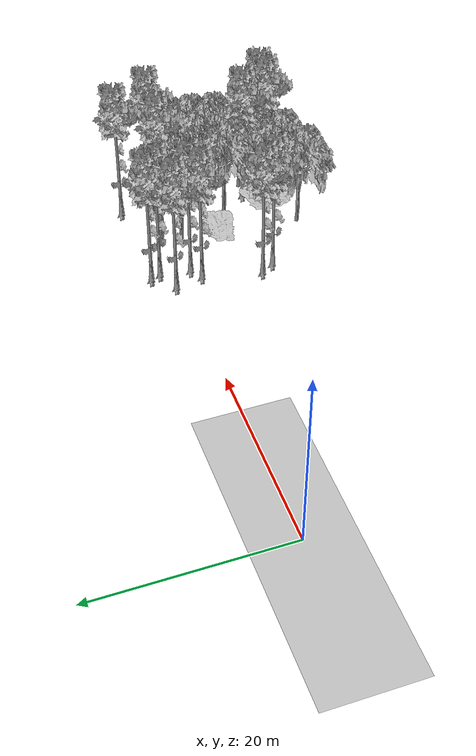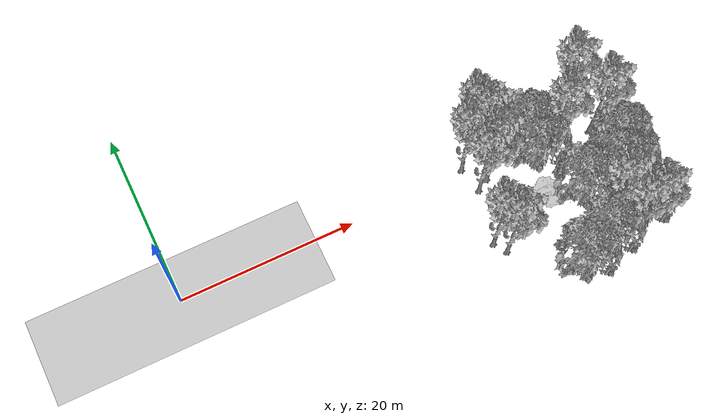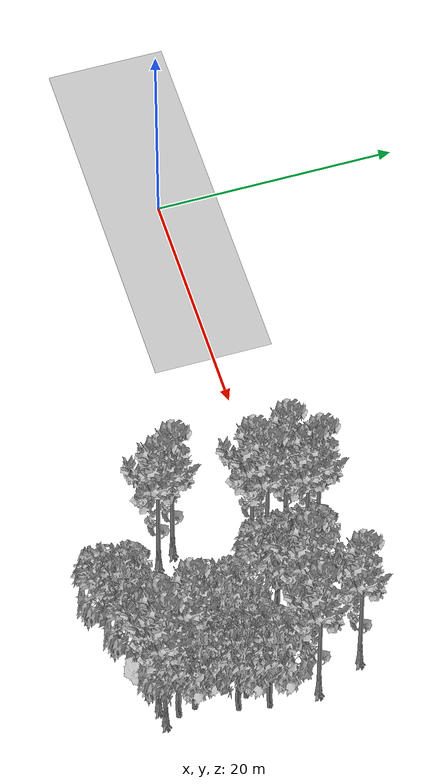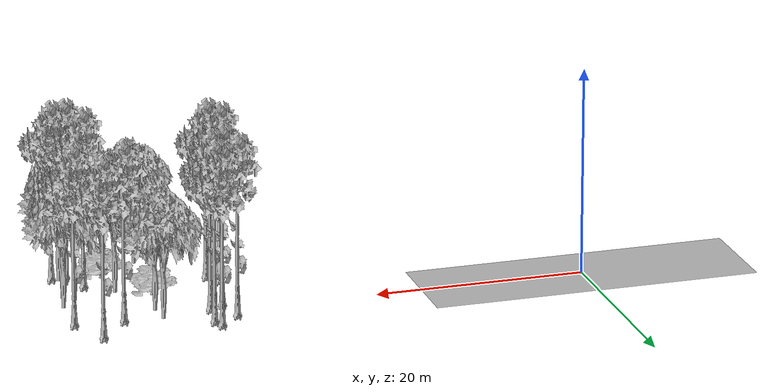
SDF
<sdf version="1.7">
 <world name="default">
  <model name="ground_plane">
   <static>1</static>
   <link name="link">
    <collision name="collision">
     <pose>-50 0 0 0 -0 0</pose>
     <geometry><plane><normal>0 0 1</normal><size>100 100</size></plane></geometry>
     <surface><contact><ode><min_depth>0.01</min_depth><max_vel>0</max_vel></ode></contact></surface>
    </collision>
    <visual name="grass">
     <cast_shadows>0</cast_shadows>
     <geometry>
      <mesh>
       <scale>0.5814285714285714 0.18142857142857144 0.1</scale>
       <uri>file://grass_plane/meshes/grass_plane.dae</uri>
      </mesh>
     </geometry>
    </visual>
   </link>
  </model>
  <model name="Tree 5">
   <static>1</static>
   <pose>46.26778932260032 -13.657653909330001 0 1.57079 -0 0</pose>
   <link name="link">
    <collision name="collision">
     <geometry><mesh><scale>3.5 5 3.5</scale><uri>model://tree_9/meshes/tree_9.obj</uri></mesh></geometry>
    </collision>
    <visual name="visual">
     <geometry><mesh><scale>3.5 5 3.5</scale><uri>model://tree_9/meshes/tree_9.obj</uri></mesh></geometry>
    </visual>
   </link>
  </model>
  <model name="Tree 8">
   <static>1</static>
   <pose>39.279730726296535 -14.857342049592196 0 1.57079 -0 0</pose>
   <link name="link">
    <collision name="collision">
     <geometry><mesh><scale>3.5 5 3.5</scale><uri>model://tree_2/meshes/tree_2.obj</uri></mesh></geometry>
    </collision>
    <visual name="visual">
     <geometry><mesh><scale>3.5 5 3.5</scale><uri>model://tree_2/meshes/tree_2.obj</uri></mesh></geometry>
    </visual>
   </link>
  </model>
  <model name="Tree 10">
   <static>1</static>
   <pose>48.38416545549488 -1.3651510952334238 0 1.57079 -0 0</pose>
   <link name="link">
    <collision name="collision">
     <geometry><mesh><scale>3.5 5 3.5</scale><uri>model://tree_9/meshes/tree_9.obj</uri></mesh></geometry>
    </collision>
    <visual name="visual">
     <geometry><mesh><scale>3.5 5 3.5</scale><uri>model://tree_9/meshes/tree_9.obj</uri></mesh></geometry>
    </visual>
   </link>
  </model>
  <model name="Tree 31">
   <static>1</static>
   <pose>33.67170362967141 -9.925883491631996 0 1.57079 -0 0</pose>
   <link name="link">
    <collision name="collision">
     <geometry><mesh><scale>3.5 5 3.5</scale><uri>model://tree_9/meshes/tree_9.obj</uri></mesh></geometry>
    </collision>
    <visual name="visual">
     <geometry><mesh><scale>3.5 5 3.5</scale><uri>model://tree_9/meshes/tree_9.obj</uri></mesh></geometry>
    </visual>
   </link>
  </model>
  <model name="Tree 36">
   <static>1</static>
   <pose>46.59404608997687 2.5339468570013146 0 1.57079 -0 0</pose>
   <link name="link">
    <collision name="collision">
     <geometry><mesh><scale>3.5 5 3.5</scale><uri>model://tree_9/meshes/tree_9.obj</uri></mesh></geometry>
    </collision>
    <visual name="visual">
     <geometry><mesh><scale>3.5 5 3.5</scale><uri>model://tree_9/meshes/tree_9.obj</uri></mesh></geometry>
    </visual>
   </link>
  </model>
  <model name="Tree 60">
   <static>1</static>
   <pose>39.800009960935185 -6.470132537083185 0 1.57079 -0 0</pose>
   <link name="link">
    <collision name="collision">
     <geometry><mesh><scale>3 2 3</scale><uri>model://tree_3/meshes/tree_3.obj</uri></mesh></geometry>
    </collision>
    <visual name="visual">
     <geometry><mesh><scale>3 2 3</scale><uri>model://tree_3/meshes/tree_3.obj</uri></mesh></geometry>
    </visual>
   </link>
  </model>
  <model name="Tree 67">
   <static>1</static>
   <pose>35.49410499102194 -1.6162299674739664 0 1.57079 -0 0</pose>
   <link name="link">
    <collision name="collision">
     <geometry><mesh><scale>3.5 5 3.5</scale><uri>model://tree_9/meshes/tree_9.obj</uri></mesh></geometry>
    </collision>
    <visual name="visual">
     <geometry><mesh><scale>3.5 5 3.5</scale><uri>model://tree_9/meshes/tree_9.obj</uri></mesh></geometry>
    </visual>
   </link>
  </model>
  <model name="Tree 138">
   <static>1</static>
   <pose>47.1347385851321 -12.319780748824224 0 1.57079 -0 0</pose>
   <link name="link">
    <collision name="collision">
     <geometry><mesh><scale>3.5 5 3.5</scale><uri>model://tree_2/meshes/tree_2.obj</uri></mesh></geometry>
    </collision>
    <visual name="visual">
     <geometry><mesh><scale>3.5 5 3.5</scale><uri>model://tree_2/meshes/tree_2.obj</uri></mesh></geometry>
    </visual>
   </link>
  </model>
  <model name="Tree 147">
   <static>1</static>
   <pose>32.75170010020453 -8.509522857434707 0 1.57079 -0 0</pose>
   <link name="link">
    <collision name="collision">
     <geometry><mesh><scale>3.5 5 3.5</scale><uri>model://tree_9/meshes/tree_9.obj</uri></mesh></geometry>
    </collision>
    <visual name="visual">
     <geometry><mesh><scale>3.5 5 3.5</scale><uri>model://tree_9/meshes/tree_9.obj</uri></mesh></geometry>
    </visual>
   </link>
  </model>
  <model name="Tree 155">
   <static>1</static>
   <pose>48.33724805029608 -5.349467480005313 0 1.57079 -0 0</pose>
   <link name="link">
    <collision name="collision">
     <geometry><mesh><scale>3.5 5 3.5</scale><uri>model://tree_2/meshes/tree_2.obj</uri></mesh></geometry>
    </collision>
    <visual name="visual">
     <geometry><mesh><scale>3.5 5 3.5</scale><uri>model://tree_2/meshes/tree_2.obj</uri></mesh></geometry>
    </visual>
   </link>
  </model>
  <model name="Tree 158">
   <static>1</static>
   <pose>47.656178686363845 -13.493441604704543 0 1.57079 -0 0</pose>
   <link name="link">
    <collision name="collision">
     <geometry><mesh><scale>3.5 5 3.5</scale><uri>model://tree_9/meshes/tree_9.obj</uri></mesh></geometry>
    </collision>
    <visual name="visual">
     <geometry><mesh><scale>3.5 5 3.5</scale><uri>model://tree_9/meshes/tree_9.obj</uri></mesh></geometry>
    </visual>
   </link>
  </model>
  <model name="Tree 165">
   <static>1</static>
   <pose>42.68493222435313 -13.311079963271577 0 1.57079 -0 0</pose>
   <link name="link">
    <collision name="collision">
     <geometry><mesh><scale>4 2.5 4</scale><uri>model://tree_1/meshes/tree_1.obj</uri></mesh></geometry>
    </collision>
    <visual name="visual">
     <geometry><mesh><scale>4 2.5 4</scale><uri>model://tree_1/meshes/tree_1.obj</uri></mesh></geometry>
    </visual>
   </link>
  </model>
  <model name="Tree 171">
   <static>1</static>
   <pose>42.59535664967645 -13.716658682666278 0 1.57079 -0 0</pose>
   <link name="link">
    <collision name="collision">
     <geometry><mesh><scale>3.5 5 3.5</scale><uri>model://tree_2/meshes/tree_2.obj</uri></mesh></geometry>
    </collision>
    <visual name="visual">
     <geometry><mesh><scale>3.5 5 3.5</scale><uri>model://tree_2/meshes/tree_2.obj</uri></mesh></geometry>
    </visual>
   </link>
  </model>
  <model name="Tree 172">
   <static>1</static>
   <pose>43.2766146022865 -12.114530911410363 0 1.57079 -0 0</pose>
   <link name="link">
    <collision name="collision">
     <geometry><mesh><scale>3 2 3</scale><uri>model://tree_3/meshes/tree_3.obj</uri></mesh></geometry>
    </collision>
    <visual name="visual">
     <geometry><mesh><scale>3 2 3</scale><uri>model://tree_3/meshes/tree_3.obj</uri></mesh></geometry>
    </visual>
   </link>
  </model>
  <model name="Tree 197">
   <static>1</static>
   <pose>42.87080940689573 -7.844555207242103 0 1.57079 -0 0</pose>
   <link name="link">
    <collision name="collision">
     <geometry><mesh><scale>3.5 5 3.5</scale><uri>model://tree_2/meshes/tree_2.obj</uri></mesh></geometry>
    </collision>
    <visual name="visual">
     <geometry><mesh><scale>3.5 5 3.5</scale><uri>model://tree_2/meshes/tree_2.obj</uri></mesh></geometry>
    </visual>
   </link>
  </model>
  <model name="Tree 203">
   <static>1</static>
   <pose>34.143458005204934 -2.4114361355312077 0 1.57079 -0 0</pose>
   <link name="link">
    <collision name="collision">
     <geometry><mesh><scale>3.5 5 3.5</scale><uri>model://tree_9/meshes/tree_9.obj</uri></mesh></geometry>
    </collision>
    <visual name="visual">
     <geometry><mesh><scale>3.5 5 3.5</scale><uri>model://tree_9/meshes/tree_9.obj</uri></mesh></geometry>
    </visual>
   </link>
  </model>
  <model name="Tree 222">
   <static>1</static>
   <pose>33.50005423930622 0.5369734188633384 0 1.57079 -0 0</pose>
   <link name="link">
    <collision name="collision">
     <geometry><mesh><scale>3.5 5 3.5</scale><uri>model://tree_9/meshes/tree_9.obj</uri></mesh></geometry>
    </collision>
    <visual name="visual">
     <geometry><mesh><scale>3.5 5 3.5</scale><uri>model://tree_9/meshes/tree_9.obj</uri></mesh></geometry>
    </visual>
   </link>
  </model>
  <model name="Tree 230">
   <static>1</static>
   <pose>35.924784180318454 1.5369787917898918 0 1.57079 -0 0</pose>
   <link name="link">
    <collision name="collision">
     <geometry><mesh><scale>3.5 5 3.5</scale><uri>model://tree_9/meshes/tree_9.obj</uri></mesh></geometry>
    </collision>
    <visual name="visual">
     <geometry><mesh><scale>3.5 5 3.5</scale><uri>model://tree_9/meshes/tree_9.obj</uri></mesh></geometry>
    </visual>
   </link>
  </model>
  <model name="Tree 232">
   <static>1</static>
   <pose>46.784859852078654 -10.930382740937619 0 1.57079 -0 0</pose>
   <link name="link">
    <collision name="collision">
     <geometry><mesh><scale>3.5 5 3.5</scale><uri>model://tree_2/meshes/tree_2.obj</uri></mesh></geometry>
    </collision>
    <visual name="visual">
     <geometry><mesh><scale>3.5 5 3.5</scale><uri>model://tree_2/meshes/tree_2.obj</uri></mesh></geometry>
    </visual>
   </link>
  </model>
  <model name="Tree 244">
   <static>1</static>
   <pose>40.468969371485684 -2.3001114934071936 0 1.57079 -0 0</pose>
   <link name="link">
    <collision name="collision">
     <geometry><mesh><scale>3.5 5 3.5</scale><uri>model://tree_2/meshes/tree_2.obj</uri></mesh></geometry>
    </collision>
    <visual name="visual">
     <geometry><mesh><scale>3.5 5 3.5</scale><uri>model://tree_2/meshes/tree_2.obj</uri></mesh></geometry>
    </visual>
   </link>
  </model>
  <model name="Tree 249">
   <static>1</static>
   <pose>40.249164336720014 -0.049667141237154766 0 1.57079 -0 0</pose>
   <link name="link">
    <collision name="collision">
     <geometry><mesh><scale>3.5 5 3.5</scale><uri>model://tree_2/meshes/tree_2.obj</uri></mesh></geometry>
    </collision>
    <visual name="visual">
     <geometry><mesh><scale>3.5 5 3.5</scale><uri>model://tree_2/meshes/tree_2.obj</uri></mesh></geometry>
    </visual>
   </link>
  </model>
  <model name="Tree 252">
   <static>1</static>
   <pose>46.94944557123911 -6.834209970047143 0 1.57079 -0 0</pose>
   <link name="link">
    <collision name="collision">
     <geometry><mesh><scale>3.5 5 3.5</scale><uri>model://tree_2/meshes/tree_2.obj</uri></mesh></geometry>
    </collision>
    <visual name="visual">
     <geometry><mesh><scale>3.5 5 3.5</scale><uri>model://tree_2/meshes/tree_2.obj</uri></mesh></geometry>
    </visual>
   </link>
  </model>
  <model name="Tree 265">
   <static>1</static>
   <pose>43.78514664508248 -1.0205926406165151 0 1.57079 -0 0</pose>
   <link name="link">
    <collision name="collision">
     <geometry><mesh><scale>3.5 5 3.5</scale><uri>model://tree_9/meshes/tree_9.obj</uri></mesh></geometry>
    </collision>
    <visual name="visual">
     <geometry><mesh><scale>3.5 5 3.5</scale><uri>model://tree_9/meshes/tree_9.obj</uri></mesh></geometry>
    </visual>
   </link>
  </model>
  <model name="Tree 277">
   <static>1</static>
   <pose>45.215070513422575 -10.761364387450246 0 1.57079 -0 0</pose>
   <link name="link">
    <collision name="collision">
     <geometry><mesh><scale>3.5 5 3.5</scale><uri>model://tree_9/meshes/tree_9.obj</uri></mesh></geometry>
    </collision>
    <visual name="visual">
     <geometry><mesh><scale>3.5 5 3.5</scale><uri>model://tree_9/meshes/tree_9.obj</uri></mesh></geometry>
    </visual>
   </link>
  </model>
  <model name="Tree 290">
   <static>1</static>
   <pose>35.488797585073215 2.585854783644315 0 1.57079 -0 0</pose>
   <link name="link">
    <collision name="collision">
     <geometry><mesh><scale>3.5 5 3.5</scale><uri>model://tree_9/meshes/tree_9.obj</uri></mesh></geometry>
    </collision>
    <visual name="visual">
     <geometry><mesh><scale>3.5 5 3.5</scale><uri>model://tree_9/meshes/tree_9.obj</uri></mesh></geometry>
    </visual>
   </link>
  </model>
  <model name="Tree 291">
   <static>1</static>
   <pose>47.8555029367362 -7.7262866181616 0 1.57079 -0 0</pose>
   <link name="link">
    <collision name="collision">
     <geometry><mesh><scale>3.5 5 3.5</scale><uri>model://tree_2/meshes/tree_2.obj</uri></mesh></geometry>
    </collision>
    <visual name="visual">
     <geometry><mesh><scale>3.5 5 3.5</scale><uri>model://tree_2/meshes/tree_2.obj</uri></mesh></geometry>
    </visual>
   </link>
  </model>
 </world>
</sdf>
